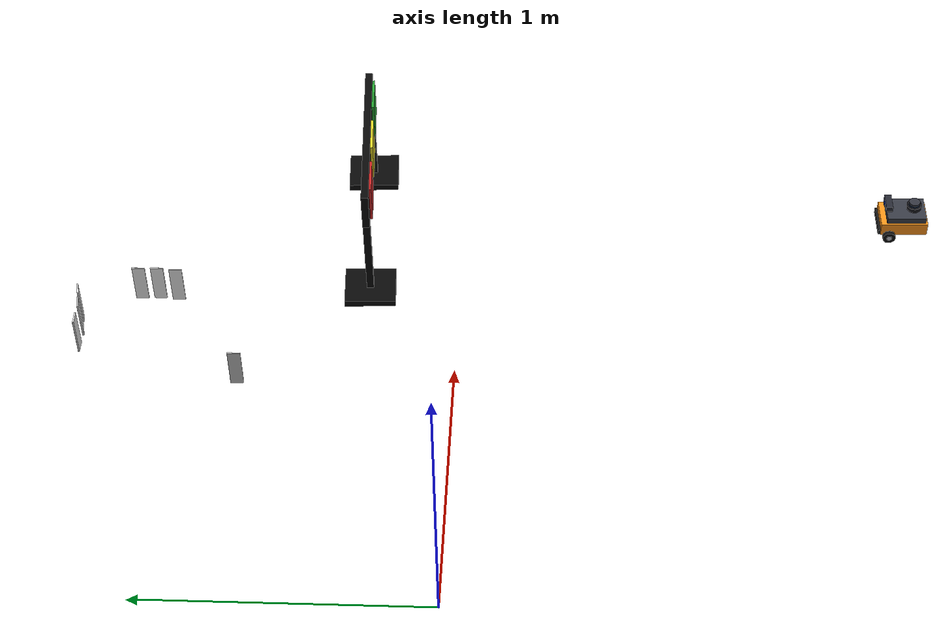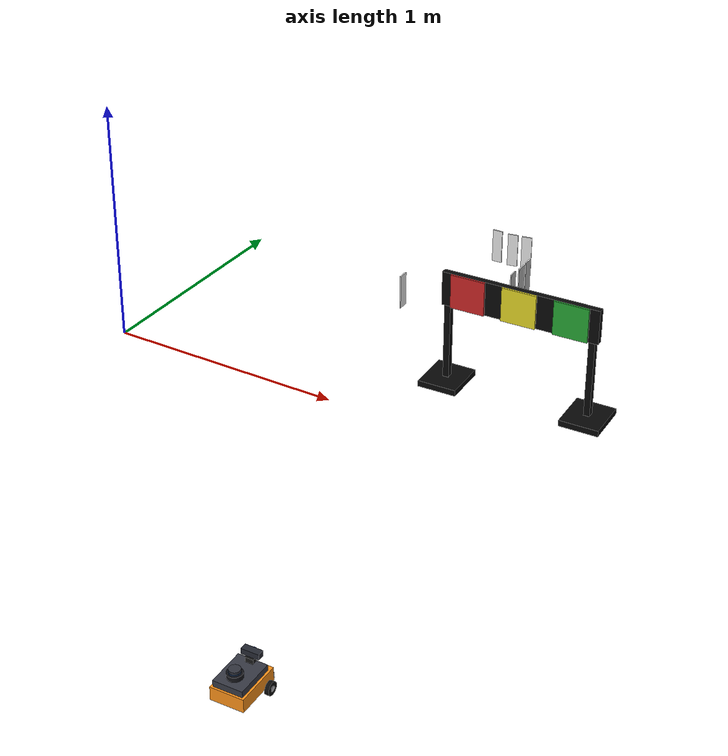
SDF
<sdf version="1.7">
 <world name="competition_world">
  <model name="my_car">
   <pose>1.714860 -1.599947 0.035000 0 -0 1.606236</pose>
   <link name="chassis">
    <inertial>
     <mass>1.2</mass>
     <inertia><ixx>0.0034</ixx><ixy>0</ixy><ixz>0</ixz><iyy>0.0063</iyy><iyz>0</iyz><izz>0.0087</izz></inertia>
    </inertial>
    <collision name="body_collision">
     <pose>0 0 0.0525 0 -0 0</pose>
     <geometry><box><size>0.168 0.119 0.049</size></box></geometry>
    </collision>
    <collision name="caster_front">
     <pose>0.063 0 0.0105 0 -0 0</pose>
     <geometry><sphere><radius>0.0105</radius></sphere></geometry>
     <surface><friction><ode><mu>0.01</mu><mu2>0.01</mu2></ode></friction></surface>
    </collision>
    <collision name="caster_back">
     <pose>-0.063 0 0.0105 0 -0 0</pose>
     <geometry><sphere><radius>0.0105</radius></sphere></geometry>
     <surface><friction><ode><mu>0.01</mu><mu2>0.01</mu2></ode></friction></surface>
    </collision>
    <visual name="body_lower">
     <pose>0 0 0.0525 0 -0 0</pose>
     <geometry><box><size>0.168 0.119 0.049</size></box></geometry>
     <material>
      <ambient>0.85 0.45 0.05 1</ambient>
      <diffuse>1 0.58 0.1 1</diffuse>
      <specular>0.5 0.5 0.5 1</specular>
     </material>
    </visual>
    <visual name="body_upper">
     <pose>-0.007 0 0.0875 0 -0 0</pose>
     <geometry><box><size>0.14 0.105 0.0245</size></box></geometry>
     <material>
      <ambient>0.12 0.12 0.14 1</ambient>
      <diffuse>0.22 0.23 0.27 1</diffuse>
      <specular>0.6 0.6 0.65 1</specular>
     </material>
    </visual>
    <visual name="bumper">
     <pose>0.0875 0 0.0385 0 -0 0</pose>
     <geometry><box><size>0.0105 0.112 0.021</size></box></geometry>
     <material><ambient>0.05 0.05 0.05 1</ambient><diffuse>0.1 0.1 0.1 1</diffuse></material>
    </visual>
    <visual name="camera_mount">
     <pose>0.0525 0 0.1085 0 -0 0</pose>
     <geometry><box><size>0.021 0.028 0.0175</size></box></geometry>
     <material><ambient>0.05 0.05 0.05 1</ambient><diffuse>0.1 0.1 0.1 1</diffuse></material>
    </visual>
    <visual name="camera_body">
     <pose>0.0595 0 0.1295 0 -0 0</pose>
     <geometry><box><size>0.0245 0.063 0.021</size></box></geometry>
     <material>
      <ambient>0.08 0.08 0.1 1</ambient>
      <diffuse>0.15 0.16 0.2 1</diffuse>
      <specular>0.7 0.7 0.75 1</specular>
     </material>
    </visual>
    <visual name="camera_lens">
     <pose>0.0735 0 0.1295 3.14159 1.57079 3.14159</pose>
     <geometry><cylinder><radius>0.0077</radius><length>0.0056</length></cylinder></geometry>
     <material>
      <ambient>0.02 0.05 0.15 1</ambient>
      <diffuse>0.05 0.15 0.45 1</diffuse>
      <specular>1 1 1 1</specular>
      <emissive>0.02 0.05 0.15 1</emissive>
     </material>
    </visual>
    <visual name="lidar_mast">
     <pose>-0.035 0 0.0987 0 -0 0</pose>
     <geometry><cylinder><radius>0.0056</radius><length>0.0294</length></cylinder></geometry>
     <material><ambient>0.5 0.08 0.05 1</ambient><diffuse>0.8 0.15 0.1 1</diffuse></material>
    </visual>
    <visual name="lidar_base">
     <pose>-0.035 0 0.1134 0 -0 0</pose>
     <geometry><cylinder><radius>0.0266</radius><length>0.0175</length></cylinder></geometry>
     <material><ambient>0.03 0.03 0.035 1</ambient><diffuse>0.08 0.08 0.1 1</diffuse></material>
    </visual>
    <visual name="lidar_head">
     <pose>-0.035 0 0.126 0 -0 0</pose>
     <geometry><cylinder><radius>0.0196</radius><length>0.0196</length></cylinder></geometry>
     <material><ambient>0.1 0.1 0.12 1</ambient><diffuse>0.2 0.21 0.25 1</diffuse></material>
    </visual>
    <visual name="lidar_window">
     <pose>-0.035 0 0.1239 0 -0 0</pose>
     <geometry><cylinder><radius>0.01995</radius><length>0.007</length></cylinder></geometry>
     <material>
      <ambient>0.05 0.08 0.12 1</ambient>
      <diffuse>0.1 0.2 0.35 1</diffuse>
      <specular>1 1 1 1</specular>
     </material>
    </visual>
   </link>
   <link name="left_wheel">
    <pose>0.0525 0.0665 0.0231 0 -0 0</pose>
    <inertial>
     <mass>0.15</mass>
     <inertia><ixx>0.0001</ixx><ixy>0</ixy><ixz>0</ixz><iyy>0.0001</iyy><iyz>0</iyz><izz>0.0001</izz></inertia>
    </inertial>
    <collision name="collision">
     <pose>0 0 0 1.5708 -0 0</pose>
     <geometry><cylinder><radius>0.0231</radius><length>0.0154</length></cylinder></geometry>
     <surface><friction><ode><mu>1.5</mu><mu2>1.5</mu2></ode></friction></surface>
    </collision>
    <visual name="visual">
     <pose>0 0 0 1.5708 -0 0</pose>
     <geometry><cylinder><radius>0.0231</radius><length>0.0154</length></cylinder></geometry>
     <material><ambient>0.02 0.02 0.02 1</ambient><diffuse>0.05 0.05 0.05 1</diffuse></material>
    </visual>
    <visual name="hub">
     <pose>0 0.0084 0 1.5708 -0 0</pose>
     <geometry><cylinder><radius>0.0098</radius><length>0.0014</length></cylinder></geometry>
     <material><ambient>0.5 0.5 0.52 1</ambient><diffuse>0.75 0.75 0.78 1</diffuse></material>
    </visual>
   </link>
   <joint name="left_wheel_joint" type="revolute">
    <parent>chassis</parent>
    <child>left_wheel</child>
    <axis>
     <xyz>0 1 0</xyz>
     <limit><lower>-1e+16</lower><upper>1e+16</upper></limit>
     <dynamics><spring_reference>0</spring_reference><spring_stiffness>0</spring_stiffness></dynamics>
    </axis>
   </joint>
   <link name="right_wheel">
    <pose>0.0525 -0.0665 0.0231 0 -0 0</pose>
    <inertial>
     <mass>0.15</mass>
     <inertia><ixx>0.0001</ixx><ixy>0</ixy><ixz>0</ixz><iyy>0.0001</iyy><iyz>0</iyz><izz>0.0001</izz></inertia>
    </inertial>
    <collision name="collision">
     <pose>0 0 0 1.5708 -0 0</pose>
     <geometry><cylinder><radius>0.0231</radius><length>0.0154</length></cylinder></geometry>
     <surface><friction><ode><mu>1.5</mu><mu2>1.5</mu2></ode></friction></surface>
    </collision>
    <visual name="visual">
     <pose>0 0 0 1.5708 -0 0</pose>
     <geometry><cylinder><radius>0.0231</radius><length>0.0154</length></cylinder></geometry>
     <material><ambient>0.02 0.02 0.02 1</ambient><diffuse>0.05 0.05 0.05 1</diffuse></material>
    </visual>
    <visual name="hub">
     <pose>0 -0.0084 0 1.5708 -0 0</pose>
     <geometry><cylinder><radius>0.0098</radius><length>0.0014</length></cylinder></geometry>
     <material><ambient>0.5 0.5 0.52 1</ambient><diffuse>0.75 0.75 0.78 1</diffuse></material>
    </visual>
   </link>
   <joint name="right_wheel_joint" type="revolute">
    <parent>chassis</parent>
    <child>right_wheel</child>
    <axis>
     <xyz>0 1 0</xyz>
     <limit><lower>-1e+16</lower><upper>1e+16</upper></limit>
     <dynamics><spring_reference>0</spring_reference><spring_stiffness>0</spring_stiffness></dynamics>
    </axis>
   </joint>
   <plugin name="diff_drive" filename="libgazebo_ros_diff_drive.so">
    <alwaysOn>1</alwaysOn>
    <updateRate>50</updateRate>
    <legacyMode>0</legacyMode>
    <leftJoint>left_wheel_joint</leftJoint>
    <rightJoint>right_wheel_joint</rightJoint>
    <wheelSeparation>0.13572</wheelSeparation>
    <wheelDiameter>0.0462</wheelDiameter>
    <wheelTorque>10</wheelTorque>
    <wheelAcceleration>1.0</wheelAcceleration>
    <commandTopic>cmd_vel</commandTopic>
    <odometryTopic>wheel_odom</odometryTopic>
    <odometrySource>encoder</odometrySource>
    <odometryFrame>odom</odometryFrame>
    <robotBaseFrame>base_footprint</robotBaseFrame>
    <publishTf>1</publishTf>
    <publishOdomTF>0</publishOdomTF>
    <publishWheelTF>0</publishWheelTF>
    <publishWheelJointState>1</publishWheelJointState>
   </plugin>
   <link name="camera_link">
    <pose>0.0735 0 0.1295 0 -0 0</pose>
    <inertial>
     <mass>0.01</mass>
     <inertia><ixx>1e-06</ixx><ixy>0</ixy><ixz>0</ixz><iyy>1e-06</iyy><iyz>0</iyz><izz>1e-06</izz></inertia>
    </inertial>
    <sensor name="depth_camera" type="depth">
     <always_on>1</always_on>
     <update_rate>15</update_rate>
     <visualize>0</visualize>
     <camera>
      <horizontal_fov>1.047</horizontal_fov>
      <image><width>640</width><height>480</height><format>R8G8B8</format></image>
      <clip><near>0.05</near><far>8</far></clip>
     </camera>
     <plugin name="depth_camera_plugin" filename="libgazebo_ros_depth_camera.so">
      <alwaysOn>1</alwaysOn>
      <updateRate>15</updateRate>
      <cameraName>camera</cameraName>
      <frameName>camera_optical_frame</frameName>
      <imageTopicName>image_raw</imageTopicName>
      <depthImageTopicName>depth/image_raw</depthImageTopicName>
      <pointCloudTopicName>depth/points</pointCloudTopicName>
      <pointCloudCutoff>0.08</pointCloudCutoff>
      <cameraInfoTopicName>camera_info</cameraInfoTopicName>
      <hackBaseline>0</hackBaseline>
     </plugin>
    </sensor>
    <sensor name="ocr_camera" type="camera">
     <always_on>0</always_on>
     <update_rate>5</update_rate>
     <visualize>0</visualize>
     <camera>
      <horizontal_fov>1.047</horizontal_fov>
      <image><width>1920</width><height>1440</height><format>R8G8B8</format></image>
      <clip><near>0.05</near><far>8</far></clip>
     </camera>
     <plugin name="ocr_camera_plugin" filename="libgazebo_ros_camera.so">
      <robotNamespace>/</robotNamespace>
      <cameraName>ocr_camera</cameraName>
      <frameName>camera_optical_frame</frameName>
      <imageTopicName>/ocr_camera/image_raw</imageTopicName>
      <cameraInfoTopicName>/ocr_camera/camera_info</cameraInfoTopicName>
     </plugin>
    </sensor>
   </link>
   <joint name="camera_joint" type="fixed"><parent>chassis</parent><child>camera_link</child></joint>
   <link name="lidar_link">
    <pose>-0.035 0 0.126 0 -0 0</pose>
    <inertial>
     <mass>0.01</mass>
     <inertia><ixx>1e-06</ixx><ixy>0</ixy><ixz>0</ixz><iyy>1e-06</iyy><iyz>0</iyz><izz>1e-06</izz></inertia>
    </inertial>
    <sensor name="lidar" type="ray">
     <always_on>1</always_on>
     <update_rate>10</update_rate>
     <visualize>0</visualize>
     <ray>
      <scan>
       <horizontal>
        <samples>360</samples>
        <resolution>1</resolution>
        <min_angle>-3.14159</min_angle>
        <max_angle>3.14159</max_angle>
       </horizontal>
       <vertical><samples>1</samples><min_angle>0</min_angle><max_angle>0</max_angle></vertical>
      </scan>
      <range><min>0.0252</min><max>3.36</max><resolution>0.01</resolution></range>
     </ray>
     <plugin name="lidar_plugin" filename="libgazebo_ros_laser.so">
      <topicName>scan</topicName>
      <frameName>lidar_link</frameName>
     </plugin>
    </sensor>
   </link>
   <joint name="lidar_joint" type="fixed"><parent>chassis</parent><child>lidar_link</child></joint>
  </model>
  <model name="traffic_light_2">
   <static>true</static>
   <pose>1.640000 0.330000 0.035000 0 -0 0.049000</pose>
   <link name="signal">
    <visual name="lamp_housing">
     <pose>0 0 0.410 0 0 0</pose>
     <geometry><box><size>0.640 0.025 0.140</size></box></geometry>
     <material><ambient>0.015 0.015 0.015 1</ambient><diffuse>0.03 0.03 0.03 1</diffuse></material>
    </visual>
    <collision name="lamp_housing_collision">
     <pose>0 0 0.410 0 0 0</pose>
     <geometry><box><size>0.640 0.025 0.140</size></box></geometry>
    </collision>
    <visual name="left_support">
     <pose>-0.295 0 0.170 0 0 0</pose>
     <geometry><box><size>0.025 0.025 0.340</size></box></geometry>
     <material><ambient>0.015 0.015 0.015 1</ambient><diffuse>0.03 0.03 0.03 1</diffuse></material>
    </visual>
    <visual name="right_support">
     <pose>0.295 0 0.170 0 0 0</pose>
     <geometry><box><size>0.025 0.025 0.340</size></box></geometry>
     <material><ambient>0.015 0.015 0.015 1</ambient><diffuse>0.03 0.03 0.03 1</diffuse></material>
    </visual>
    <collision name="left_support_collision">
     <pose>-0.295 0 0.170 0 0 0</pose>
     <geometry><box><size>0.025 0.025 0.340</size></box></geometry>
    </collision>
    <collision name="right_support_collision">
     <pose>0.295 0 0.170 0 0 0</pose>
     <geometry><box><size>0.025 0.025 0.340</size></box></geometry>
    </collision>
    <visual name="left_foot">
     <pose>-0.295 0 0.0125 0 0 0</pose>
     <geometry><box><size>0.160 0.180 0.025</size></box></geometry>
     <material><ambient>0.015 0.015 0.015 1</ambient><diffuse>0.03 0.03 0.03 1</diffuse></material>
    </visual>
    <visual name="right_foot">
     <pose>0.295 0 0.0125 0 0 0</pose>
     <geometry><box><size>0.160 0.180 0.025</size></box></geometry>
     <material><ambient>0.015 0.015 0.015 1</ambient><diffuse>0.03 0.03 0.03 1</diffuse></material>
    </visual>
    <collision name="left_foot_collision">
     <pose>-0.295 0 0.0125 0 0 0</pose>
     <geometry><box><size>0.160 0.180 0.025</size></box></geometry>
    </collision>
    <collision name="right_foot_collision">
     <pose>0.295 0 0.0125 0 0 0</pose>
     <geometry><box><size>0.160 0.180 0.025</size></box></geometry>
    </collision>
    <visual name="red_lamp">
     <pose>-0.210 -0.018 0.410 0 0 0</pose>
     <geometry><box><size>0.140 0.008 0.140</size></box></geometry>
     <material>
      <script>
       <uri>file:///root/traffic_light/materials/scripts</uri>
       <uri>file:///root/traffic_light/materials/textures</uri>
       <name>TrafficLight/RedOn</name>
      </script>
     </material>
    </visual>
    <visual name="yellow_lamp">
     <pose>0 -0.018 0.410 0 0 0</pose>
     <geometry><box><size>0.140 0.008 0.140</size></box></geometry>
     <material>
      <script>
       <uri>file:///root/traffic_light/materials/scripts</uri>
       <uri>file:///root/traffic_light/materials/textures</uri>
       <name>TrafficLight/YellowOff</name>
      </script>
     </material>
    </visual>
    <visual name="green_lamp">
     <pose>0.210 -0.018 0.410 0 0 0</pose>
     <geometry><box><size>0.140 0.008 0.140</size></box></geometry>
     <material>
      <script>
       <uri>file:///root/traffic_light/materials/scripts</uri>
       <uri>file:///root/traffic_light/materials/textures</uri>
       <name>TrafficLight/GreenOff</name>
      </script>
     </material>
    </visual>
   </link>
  </model>
  <model name="person_standee_01">
   <pose>1.115504861 1.309736729 0.035000000 0 0 -2.958000067</pose>
   <static>1</static>
   <pose>1.115504861 1.309736729 0.035000000 0 0 -2.958000067</pose>
   <link name="standee">
    <visual name="standee_board">
     <pose>0 0 0.075 0 0 0</pose>
     <geometry><box><size>0.045 0.005 0.15</size></box></geometry>
     <material><ambient>0.82 0.82 0.82 1</ambient><diffuse>0.92 0.92 0.92 1</diffuse></material>
    </visual>
    <visual name="person_image_front">
     <pose>0 -0.00255 0.075 0 0 0</pose>
     <geometry><box><size>0.045 0.0001 0.15</size></box></geometry>
     <material>
      <script>
       <uri>file:///root/person_standees/materials/scripts</uri>
       <uri>file:///root/person_standees/materials/textures</uri>
       <name>PersonStandee/Person01</name>
      </script>
     </material>
    </visual>
    <collision name="collision">
     <pose>0 0 0.075 0 0 0</pose>
     <geometry><box><size>0.045 0.005 0.15</size></box></geometry>
    </collision>
   </link>
  </model>
  <model name="person_standee_02">
   <pose>1.177493095 1.319037199 0.035000000 0 0 -2.949000032</pose>
   <static>1</static>
   <pose>1.177493095 1.319037199 0.035000000 0 0 -2.949000032</pose>
   <link name="standee">
    <visual name="standee_board">
     <pose>0 0 0.075 0 0 0</pose>
     <geometry><box><size>0.045 0.005 0.15</size></box></geometry>
     <material><ambient>0.82 0.82 0.82 1</ambient><diffuse>0.92 0.92 0.92 1</diffuse></material>
    </visual>
    <visual name="person_image_front">
     <pose>0 -0.00255 0.075 0 0 0</pose>
     <geometry><box><size>0.045 0.0001 0.15</size></box></geometry>
     <material>
      <script>
       <uri>file:///root/person_standees/materials/scripts</uri>
       <uri>file:///root/person_standees/materials/textures</uri>
       <name>PersonStandee/Person02</name>
      </script>
     </material>
    </visual>
    <collision name="collision">
     <pose>0 0 0.075 0 0 0</pose>
     <geometry><box><size>0.045 0.005 0.15</size></box></geometry>
    </collision>
   </link>
  </model>
  <model name="person_standee_05">
   <pose>1.040790915 1.309235215 0.035000000 0 0 3.138000000</pose>
   <static>1</static>
   <pose>1.040790915 1.309235215 0.035000000 0 0 3.138000000</pose>
   <link name="standee">
    <visual name="standee_board">
     <pose>0 0 0.075 0 -0 0</pose>
     <geometry><box><size>0.045 0.005 0.15</size></box></geometry>
     <material><ambient>0.82 0.82 0.82 1</ambient><diffuse>0.92 0.92 0.92 1</diffuse></material>
    </visual>
    <visual name="person_image_front">
     <pose>0 -0.00255 0.075 0 -0 0</pose>
     <geometry><box><size>0.045 0.0001 0.15</size></box></geometry>
     <material>
      <script>
       <uri>file:///root/person_standees/materials/scripts</uri>
       <uri>file:///root/person_standees/materials/textures</uri>
       <name>PersonStandee/Person05</name>
      </script>
     </material>
    </visual>
    <collision name="collision">
     <pose>0 0 0.075 0 -0 0</pose>
     <geometry><box><size>0.045 0.005 0.15</size></box></geometry>
    </collision>
   </link>
  </model>
  <model name="person_standee_06">
   <pose>1.284142971 1.058192611 0.035000000 0 0 1.553000081</pose>
   <static>1</static>
   <pose>1.284142971 1.058192611 0.035000000 0 0 1.553000081</pose>
   <link name="standee">
    <visual name="standee_board">
     <pose>0 0 0.075 0 -0 0</pose>
     <geometry><box><size>0.045 0.005 0.15</size></box></geometry>
     <material><ambient>0.82 0.82 0.82 1</ambient><diffuse>0.92 0.92 0.92 1</diffuse></material>
    </visual>
    <visual name="person_image_front">
     <pose>0 -0.00255 0.075 0 -0 0</pose>
     <geometry><box><size>0.045 0.0001 0.15</size></box></geometry>
     <material>
      <script>
       <uri>file:///root/person_standees/materials/scripts</uri>
       <uri>file:///root/person_standees/materials/textures</uri>
       <name>PersonStandee/Person06</name>
      </script>
     </material>
    </visual>
    <collision name="collision">
     <pose>0 0 0.075 0 -0 0</pose>
     <geometry><box><size>0.045 0.005 0.15</size></box></geometry>
    </collision>
   </link>
  </model>
  <model name="person_standee_07">
   <pose>1.279198527 0.992128134 0.035000000 0 0 1.616000113</pose>
   <static>1</static>
   <pose>1.279198527 0.992128134 0.035000000 0 0 1.616000113</pose>
   <link name="standee">
    <visual name="standee_board">
     <pose>0 0 0.075 0 0 0</pose>
     <geometry><box><size>0.045 0.005 0.15</size></box></geometry>
     <material><ambient>0.82 0.82 0.82 1</ambient><diffuse>0.92 0.92 0.92 1</diffuse></material>
    </visual>
    <visual name="person_image_front">
     <pose>0 -0.00255 0.075 0 0 0</pose>
     <geometry><box><size>0.045 0.0001 0.15</size></box></geometry>
     <material>
      <script>
       <uri>file:///root/person_standees/materials/scripts</uri>
       <uri>file:///root/person_standees/materials/textures</uri>
       <name>PersonStandee/Person07</name>
      </script>
     </material>
    </visual>
    <collision name="collision">
     <pose>0 0 0.075 0 0 0</pose>
     <geometry><box><size>0.045 0.005 0.15</size></box></geometry>
    </collision>
   </link>
  </model>
  <model name="person_standee_12">
   <pose>0.894745469 0.742306292 0.035000000 0 0 -1.548999954</pose>
   <static>1</static>
   <pose>0.894745469 0.742306292 0.035000000 0 0 -1.548999954</pose>
   <link name="standee">
    <visual name="standee_board">
     <pose>0 0 0.075 0 -0 0</pose>
     <geometry><box><size>0.045 0.005 0.15</size></box></geometry>
     <material><ambient>0.82 0.82 0.82 1</ambient><diffuse>0.92 0.92 0.92 1</diffuse></material>
    </visual>
    <visual name="person_image_front">
     <pose>0 -0.00255 0.075 0 -0 0</pose>
     <geometry><box><size>0.045 0.0001 0.15</size></box></geometry>
     <material>
      <script>
       <uri>file:///root/person_standees/materials/scripts</uri>
       <uri>file:///root/person_standees/materials/textures</uri>
       <name>PersonStandee/Person12</name>
      </script>
     </material>
    </visual>
    <collision name="collision">
     <pose>0 0 0.075 0 -0 0</pose>
     <geometry><box><size>0.045 0.005 0.15</size></box></geometry>
    </collision>
   </link>
  </model>
  <model name="person_standee_18">
   <pose>1.281699181 1.122667909 0.035000000 0 0 1.592000045</pose>
   <static>1</static>
   <pose>1.281699181 1.122667909 0.035000000 0 0 1.592000045</pose>
   <link name="standee">
    <visual name="standee_board">
     <pose>0 0 0.075 0 -0 0</pose>
     <geometry><box><size>0.045 0.005 0.15</size></box></geometry>
     <material><ambient>0.82 0.82 0.82 1</ambient><diffuse>0.92 0.92 0.92 1</diffuse></material>
    </visual>
    <visual name="person_image_front">
     <pose>0 -0.00255 0.075 0 -0 0</pose>
     <geometry><box><size>0.045 0.0001 0.15</size></box></geometry>
     <material>
      <script>
       <uri>file:///root/person_standees/materials/scripts</uri>
       <uri>file:///root/person_standees/materials/textures</uri>
       <name>PersonStandee/PersonF2</name>
      </script>
     </material>
    </visual>
    <collision name="collision">
     <pose>0 0 0.075 0 -0 0</pose>
     <geometry><box><size>0.045 0.005 0.15</size></box></geometry>
    </collision>
   </link>
  </model>
 </world>
</sdf>
